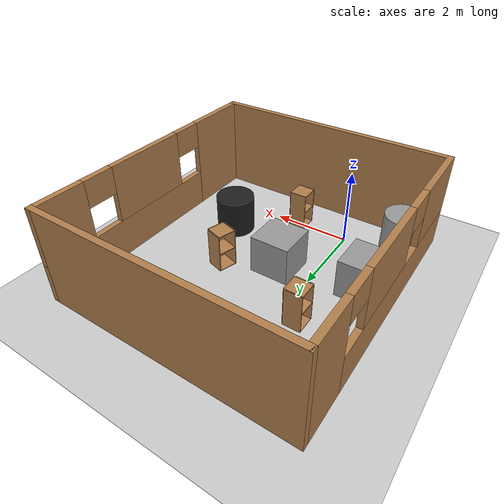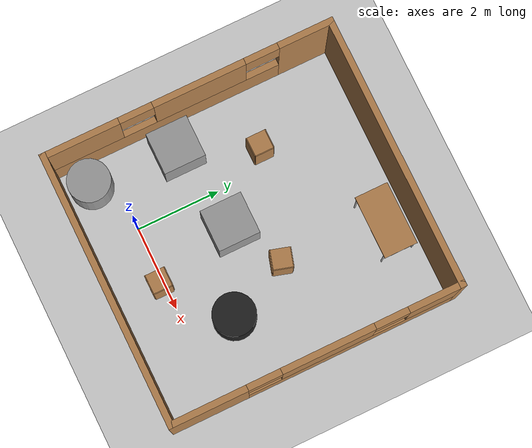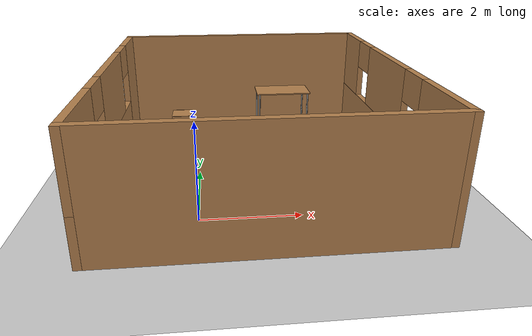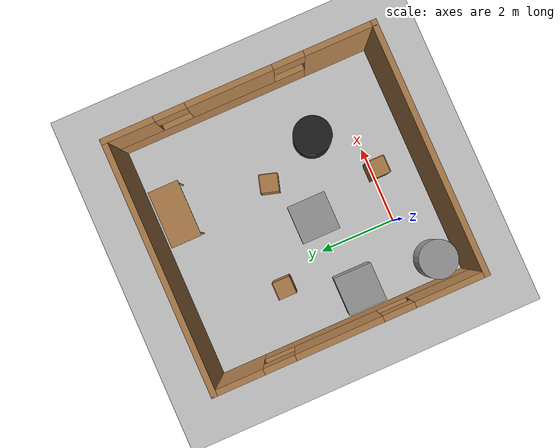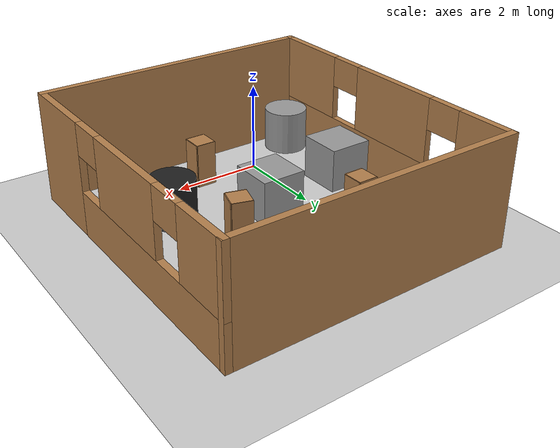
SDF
<sdf version="1.4">
 <world name="default">
  <light name="sun" type="directional">
   <pose>0 0 10 0 -0 0</pose>
   <diffuse>0.8 0.8 0.8 1</diffuse>
   <specular>0.2 0.2 0.2 1</specular>
   <attenuation>
    <range>1000</range>
    <constant>0.9</constant>
    <linear>0.01</linear>
    <quadratic>0.001</quadratic>
   </attenuation>
   <direction>0.5 0.1 -0.9</direction>
  </light>
  <model name="ground_plane">
   <static>1</static>
   <link name="link">
    <collision name="collision">
     <geometry><plane><normal>0 0 1</normal><size>100 100</size></plane></geometry>
     <surface><friction><ode><mu>100</mu><mu2>50</mu2></ode></friction></surface>
    </collision>
    <visual name="visual">
     <cast_shadows>0</cast_shadows>
     <geometry><plane><normal>0 0 1</normal><size>100 100</size></plane></geometry>
     <material>
      <script><uri>file://media/materials/scripts/gazebo.material</uri><name>Gazebo/Grey</name></script>
     </material>
    </visual>
    <velocity_decay><linear>0</linear><angular>0</angular></velocity_decay>
   </link>
  </model>
  <scene><ambient>0.4 0.4 0.4 1</ambient><background>0.7 0.7 0.7 1</background><shadows>0</shadows></scene>
  <physics name="default_physics" default="0" type="ode">
   <max_step_size>0.01</max_step_size>
   <real_time_factor>4</real_time_factor>
   <real_time_update_rate>400</real_time_update_rate>
  </physics>
  <model name="room">
   <pose>1.2563 2.23891 0 0 -0 0</pose>
   <link name="Wall_0">
    <collision name="Wall_0_Collision">
     <geometry><box><size>6.5 0.15 2.5</size></box></geometry>
     <pose>0 0 1.25 0 -0 0</pose>
    </collision>
    <visual name="Wall_0_Visual">
     <pose>0 0 1.25 0 -0 0</pose>
     <geometry><box><size>6.5 0.15 2.5</size></box></geometry>
     <material>
      <script><uri>file://media/materials/scripts/gazebo.material</uri><name>Gazebo/Wood</name></script>
      <ambient>1 1 1 1</ambient>
     </material>
    </visual>
    <pose>0 -3.425 0 0 -0 0</pose>
   </link>
   <link name="Wall_1">
    <pose>3.175 0 0 0 -0 1.5708</pose>
    <visual name="Wall_1_Visual_0">
     <pose>-2.56946 0 1.25 0 -0 0</pose>
     <geometry><box><size>1.86109 0.15 2.5</size></box></geometry>
     <material>
      <script><uri>file://media/materials/scripts/gazebo.material</uri><name>Gazebo/Wood</name></script>
      <ambient>0.760784 0.662745 0.627451 1</ambient>
     </material>
    </visual>
    <collision name="Wall_1_Collision_0">
     <geometry><box><size>1.86109 0.15 2.5</size></box></geometry>
     <pose>-2.56946 0 1.25 0 -0 0</pose>
    </collision>
    <visual name="Wall_1_Visual_1">
     <pose>0.930543 0 0.5 0 -0 0</pose>
     <geometry><box><size>5.13891 0.15 1</size></box></geometry>
     <material>
      <script><uri>file://media/materials/scripts/gazebo.material</uri><name>Gazebo/Wood</name></script>
      <ambient>0.760784 0.662745 0.627451 1</ambient>
     </material>
    </visual>
    <collision name="Wall_1_Collision_1">
     <geometry><box><size>5.13891 0.15 1</size></box></geometry>
     <pose>0.930543 0 0.5 0 -0 0</pose>
    </collision>
    <visual name="Wall_1_Visual_2">
     <pose>0.261087 0 1.75 0 -0 0</pose>
     <geometry><box><size>2.2 0.15 1.5</size></box></geometry>
     <material>
      <script><uri>file://media/materials/scripts/gazebo.material</uri><name>Gazebo/Wood</name></script>
      <ambient>0.760784 0.662745 0.627451 1</ambient>
     </material>
    </visual>
    <collision name="Wall_1_Collision_2">
     <geometry><box><size>2.2 0.15 1.5</size></box></geometry>
     <pose>0.261087 0 1.75 0 -0 0</pose>
    </collision>
    <visual name="Wall_1_Visual_3">
     <pose>2.83054 0 1.75 0 -0 0</pose>
     <geometry><box><size>1.33891 0.15 1.5</size></box></geometry>
     <material>
      <script><uri>file://media/materials/scripts/gazebo.material</uri><name>Gazebo/Wood</name></script>
      <ambient>0.760784 0.662745 0.627451 1</ambient>
     </material>
    </visual>
    <collision name="Wall_1_Collision_3">
     <geometry><box><size>1.33891 0.15 1.5</size></box></geometry>
     <pose>2.83054 0 1.75 0 -0 0</pose>
    </collision>
    <visual name="Wall_1_Visual_4">
     <pose>-1.23891 0 2.15 0 -0 0</pose>
     <geometry><box><size>0.8 0.15 0.7</size></box></geometry>
     <material>
      <script><uri>file://media/materials/scripts/gazebo.material</uri><name>Gazebo/Wood</name></script>
      <ambient>0.760784 0.662745 0.627451 1</ambient>
     </material>
    </visual>
    <collision name="Wall_1_Collision_4">
     <geometry><box><size>0.8 0.15 0.7</size></box></geometry>
     <pose>-1.23891 0 2.15 0 -0 0</pose>
    </collision>
    <visual name="Wall_1_Visual_5">
     <pose>1.76109 0 2.15 0 -0 0</pose>
     <geometry><box><size>0.8 0.15 0.7</size></box></geometry>
     <material>
      <script><uri>file://media/materials/scripts/gazebo.material</uri><name>Gazebo/Wood</name></script>
      <ambient>0.760784 0.662745 0.627451 1</ambient>
     </material>
    </visual>
    <collision name="Wall_1_Collision_5">
     <geometry><box><size>0.8 0.15 0.7</size></box></geometry>
     <pose>1.76109 0 2.15 0 -0 0</pose>
    </collision>
   </link>
   <link name="Wall_2">
    <collision name="Wall_2_Collision">
     <geometry><box><size>6.5 0.15 2.5</size></box></geometry>
     <pose>0 0 1.25 0 -0 0</pose>
    </collision>
    <visual name="Wall_2_Visual">
     <pose>0 0 1.25 0 -0 0</pose>
     <geometry><box><size>6.5 0.15 2.5</size></box></geometry>
     <material>
      <script><uri>file://media/materials/scripts/gazebo.material</uri><name>Gazebo/Wood</name></script>
      <ambient>0.921569 0.807843 0.615686 1</ambient>
     </material>
    </visual>
    <pose>0 3.425 0 0 -0 3.14159</pose>
   </link>
   <link name="Wall_3">
    <pose>-3.175 0 0 0 0 -1.5708</pose>
    <visual name="Wall_3_Visual_0">
     <pose>-2.83054 0 1.25 0 -0 0</pose>
     <geometry><box><size>1.33891 0.15 2.5</size></box></geometry>
     <material>
      <script><uri>file://media/materials/scripts/gazebo.material</uri><name>Gazebo/Wood</name></script>
      <ambient>1 1 1 1</ambient>
     </material>
    </visual>
    <collision name="Wall_3_Collision_0">
     <geometry><box><size>1.33891 0.15 2.5</size></box></geometry>
     <pose>-2.83054 0 1.25 0 -0 0</pose>
    </collision>
    <visual name="Wall_3_Visual_1">
     <pose>0.669457 0 0.5 0 -0 0</pose>
     <geometry><box><size>5.66109 0.15 1</size></box></geometry>
     <material>
      <script><uri>file://media/materials/scripts/gazebo.material</uri><name>Gazebo/Wood</name></script>
      <ambient>1 1 1 1</ambient>
     </material>
    </visual>
    <collision name="Wall_3_Collision_1">
     <geometry><box><size>5.66109 0.15 1</size></box></geometry>
     <pose>0.669457 0 0.5 0 -0 0</pose>
    </collision>
    <visual name="Wall_3_Visual_2">
     <pose>-0.261087 0 1.75 0 -0 0</pose>
     <geometry><box><size>2.2 0.15 1.5</size></box></geometry>
     <material>
      <script><uri>file://media/materials/scripts/gazebo.material</uri><name>Gazebo/Wood</name></script>
      <ambient>1 1 1 1</ambient>
     </material>
    </visual>
    <collision name="Wall_3_Collision_2">
     <geometry><box><size>2.2 0.15 1.5</size></box></geometry>
     <pose>-0.261087 0 1.75 0 -0 0</pose>
    </collision>
    <visual name="Wall_3_Visual_3">
     <pose>2.56946 0 1.75 0 -0 0</pose>
     <geometry><box><size>1.86109 0.15 1.5</size></box></geometry>
     <material>
      <script><uri>file://media/materials/scripts/gazebo.material</uri><name>Gazebo/Wood</name></script>
      <ambient>1 1 1 1</ambient>
     </material>
    </visual>
    <collision name="Wall_3_Collision_3">
     <geometry><box><size>1.86109 0.15 1.5</size></box></geometry>
     <pose>2.56946 0 1.75 0 -0 0</pose>
    </collision>
    <visual name="Wall_3_Visual_4">
     <pose>-1.76109 0 2.15 0 -0 0</pose>
     <geometry><box><size>0.8 0.15 0.7</size></box></geometry>
     <material>
      <script><uri>file://media/materials/scripts/gazebo.material</uri><name>Gazebo/Wood</name></script>
      <ambient>1 1 1 1</ambient>
     </material>
    </visual>
    <collision name="Wall_3_Collision_4">
     <geometry><box><size>0.8 0.15 0.7</size></box></geometry>
     <pose>-1.76109 0 2.15 0 -0 0</pose>
    </collision>
    <visual name="Wall_3_Visual_5">
     <pose>1.23891 0 2.15 0 -0 0</pose>
     <geometry><box><size>0.8 0.15 0.7</size></box></geometry>
     <material>
      <script><uri>file://media/materials/scripts/gazebo.material</uri><name>Gazebo/Wood</name></script>
      <ambient>1 1 1 1</ambient>
     </material>
    </visual>
    <collision name="Wall_3_Collision_5">
     <geometry><box><size>0.8 0.15 0.7</size></box></geometry>
     <pose>1.23891 0 2.15 0 -0 0</pose>
    </collision>
   </link>
   <static>1</static>
  </model>
  <model name="cabinet">
   <static>1</static>
   <link name="cabinet_bottom_plate">
    <inertial>
     <pose>0 0 -1 0 -0 0</pose>
     <inertia><ixx>2.05</ixx><ixy>0</ixy><ixz>0</ixz><iyy>2.05</iyy><iyz>0</iyz><izz>2.05</izz></inertia>
     <mass>25</mass>
    </inertial>
    <collision name="cabinet_bottom_plate_geom">
     <pose>0 0 0.01 0 -0 0</pose>
     <geometry><box><size>0.45 0.45 0.02</size></box></geometry>
    </collision>
    <visual name="cabinet_bottom_plate_geom_visual">
     <pose>0 0 0.01 0 -0 0</pose>
     <geometry><box><size>0.45 0.45 0.02</size></box></geometry>
     <material>
      <script><uri>file://media/materials/scripts/gazebo.material</uri><name>Gazebo/Wood</name></script>
     </material>
    </visual>
    <collision name="cabinet_bottom_plate_geom_cabinet_back_plate">
     <pose>0.235 0 0.51 0 -0 0</pose>
     <geometry><box><size>0.02 0.45 1.02</size></box></geometry>
    </collision>
    <visual name="cabinet_bottom_plate_geom_cabinet_back_plate_visual">
     <pose>0.235 0 0.51 0 -0 0</pose>
     <geometry><box><size>0.02 0.45 1.02</size></box></geometry>
     <material>
      <script><uri>file://media/materials/scripts/gazebo.material</uri><name>Gazebo/Wood</name></script>
     </material>
    </visual>
    <collision name="cabinet_bottom_plate_geom_cabinet_left_plate">
     <pose>0 0.235 0.51 0 -0 0</pose>
     <geometry><box><size>0.45 0.02 1.02</size></box></geometry>
    </collision>
    <visual name="cabinet_bottom_plate_geom_cabinet_left_plate_visual">
     <pose>0 0.235 0.51 0 -0 0</pose>
     <geometry><box><size>0.45 0.02 1.02</size></box></geometry>
     <material>
      <script><uri>file://media/materials/scripts/gazebo.material</uri><name>Gazebo/Wood</name></script>
     </material>
    </visual>
    <collision name="cabinet_bottom_plate_geom_cabinet_middle_plate">
     <pose>0 0 0.51 0 -0 0</pose>
     <geometry><box><size>0.45 0.45 0.02</size></box></geometry>
    </collision>
    <visual name="cabinet_bottom_plate_geom_cabinet_middle_plate_visual">
     <pose>0 0 0.51 0 -0 0</pose>
     <geometry><box><size>0.45 0.45 0.02</size></box></geometry>
     <material>
      <script><uri>file://media/materials/scripts/gazebo.material</uri><name>Gazebo/Wood</name></script>
     </material>
    </visual>
    <collision name="cabinet_bottom_plate_geom_cabinet_right_plate">
     <pose>0 -0.235 0.51 0 -0 0</pose>
     <geometry><box><size>0.45 0.02 1.02</size></box></geometry>
    </collision>
    <visual name="cabinet_bottom_plate_geom_cabinet_right_plate_visual">
     <pose>0 -0.235 0.51 0 -0 0</pose>
     <geometry><box><size>0.45 0.02 1.02</size></box></geometry>
     <material>
      <script><uri>file://media/materials/scripts/gazebo.material</uri><name>Gazebo/Wood</name></script>
     </material>
    </visual>
    <collision name="cabinet_bottom_plate_geom_cabinet_top_plate">
     <pose>0 0 1.01 0 -0 0</pose>
     <geometry><box><size>0.45 0.45 0.02</size></box></geometry>
    </collision>
    <visual name="cabinet_bottom_plate_geom_cabinet_top_plate_visual">
     <pose>0 0 1.01 0 -0 0</pose>
     <geometry><box><size>0.45 0.45 0.02</size></box></geometry>
     <material>
      <script><uri>file://media/materials/scripts/gazebo.material</uri><name>Gazebo/Wood</name></script>
     </material>
    </visual>
   </link>
   <pose>2.10554 2.55537 0 0 0 -0.287941</pose>
  </model>
  <model name="cabinet_0">
   <static>1</static>
   <link name="cabinet_bottom_plate">
    <inertial>
     <pose>0 0 -1 0 -0 0</pose>
     <inertia><ixx>2.05</ixx><ixy>0</ixy><ixz>0</ixz><iyy>2.05</iyy><iyz>0</iyz><izz>2.05</izz></inertia>
     <mass>25</mass>
    </inertial>
    <collision name="cabinet_bottom_plate_geom">
     <pose>0 0 0.01 0 -0 0</pose>
     <geometry><box><size>0.45 0.45 0.02</size></box></geometry>
    </collision>
    <visual name="cabinet_bottom_plate_geom_visual">
     <pose>0 0 0.01 0 -0 0</pose>
     <geometry><box><size>0.45 0.45 0.02</size></box></geometry>
     <material>
      <script><uri>file://media/materials/scripts/gazebo.material</uri><name>Gazebo/Wood</name></script>
     </material>
    </visual>
    <collision name="cabinet_bottom_plate_geom_cabinet_back_plate">
     <pose>0.235 0 0.51 0 -0 0</pose>
     <geometry><box><size>0.02 0.45 1.02</size></box></geometry>
    </collision>
    <visual name="cabinet_bottom_plate_geom_cabinet_back_plate_visual">
     <pose>0.235 0 0.51 0 -0 0</pose>
     <geometry><box><size>0.02 0.45 1.02</size></box></geometry>
     <material>
      <script><uri>file://media/materials/scripts/gazebo.material</uri><name>Gazebo/Wood</name></script>
     </material>
    </visual>
    <collision name="cabinet_bottom_plate_geom_cabinet_left_plate">
     <pose>0 0.235 0.51 0 -0 0</pose>
     <geometry><box><size>0.45 0.02 1.02</size></box></geometry>
    </collision>
    <visual name="cabinet_bottom_plate_geom_cabinet_left_plate_visual">
     <pose>0 0.235 0.51 0 -0 0</pose>
     <geometry><box><size>0.45 0.02 1.02</size></box></geometry>
     <material>
      <script><uri>file://media/materials/scripts/gazebo.material</uri><name>Gazebo/Wood</name></script>
     </material>
    </visual>
    <collision name="cabinet_bottom_plate_geom_cabinet_middle_plate">
     <pose>0 0 0.51 0 -0 0</pose>
     <geometry><box><size>0.45 0.45 0.02</size></box></geometry>
    </collision>
    <visual name="cabinet_bottom_plate_geom_cabinet_middle_plate_visual">
     <pose>0 0 0.51 0 -0 0</pose>
     <geometry><box><size>0.45 0.45 0.02</size></box></geometry>
     <material>
      <script><uri>file://media/materials/scripts/gazebo.material</uri><name>Gazebo/Wood</name></script>
     </material>
    </visual>
    <collision name="cabinet_bottom_plate_geom_cabinet_right_plate">
     <pose>0 -0.235 0.51 0 -0 0</pose>
     <geometry><box><size>0.45 0.02 1.02</size></box></geometry>
    </collision>
    <visual name="cabinet_bottom_plate_geom_cabinet_right_plate_visual">
     <pose>0 -0.235 0.51 0 -0 0</pose>
     <geometry><box><size>0.45 0.02 1.02</size></box></geometry>
     <material>
      <script><uri>file://media/materials/scripts/gazebo.material</uri><name>Gazebo/Wood</name></script>
     </material>
    </visual>
    <collision name="cabinet_bottom_plate_geom_cabinet_top_plate">
     <pose>0 0 1.01 0 -0 0</pose>
     <geometry><box><size>0.45 0.45 0.02</size></box></geometry>
    </collision>
    <visual name="cabinet_bottom_plate_geom_cabinet_top_plate_visual">
     <pose>0 0 1.01 0 -0 0</pose>
     <geometry><box><size>0.45 0.45 0.02</size></box></geometry>
     <material>
      <script><uri>file://media/materials/scripts/gazebo.material</uri><name>Gazebo/Wood</name></script>
     </material>
    </visual>
   </link>
   <pose>1.37252 -0.091914 0 0 -0 0</pose>
  </model>
  <model name="unit_cylinder_0">
   <pose>2.76708 1.08151 0.499096 4.8e-05 4.8e-05 -1.8e-05</pose>
   <link name="link">
    <inertial>
     <mass>1</mass>
     <inertia><ixx>0.145833</ixx><ixy>0</ixy><ixz>0</ixz><iyy>0.145833</iyy><iyz>0</iyz><izz>0.125</izz></inertia>
    </inertial>
    <collision name="collision">
     <geometry><cylinder><radius>0.5</radius><length>1</length></cylinder></geometry>
    </collision>
    <visual name="visual">
     <geometry><cylinder><radius>0.5</radius><length>1</length></cylinder></geometry>
     <material>
      <script><name>Gazebo/Black</name><uri>file://media/materials/scripts/gazebo.material</uri></script>
     </material>
    </visual>
   </link>
  </model>
  <model name="unit_box_1">
   <pose>0.875712 1.88515 0.49907 0.0001 0 -1e-06</pose>
   <link name="link">
    <inertial>
     <mass>1</mass>
     <inertia>
      <ixx>0.166667</ixx>
      <ixy>0</ixy>
      <ixz>0</ixz>
      <iyy>0.166667</iyy>
      <iyz>0</iyz>
      <izz>0.166667</izz>
     </inertia>
    </inertial>
    <collision name="collision"><geometry><box><size>1 1 1</size></box></geometry></collision>
    <visual name="visual">
     <geometry><box><size>1 1 1</size></box></geometry>
     <material>
      <script><name>Gazebo/Grey</name><uri>file://media/materials/scripts/gazebo.material</uri></script>
     </material>
    </visual>
   </link>
  </model>
  <model name="unit_box_0">
   <pose>-1.207 1.54488 0.49907 -0.0001 -0 -1e-06</pose>
   <link name="link">
    <inertial>
     <mass>1</mass>
     <inertia>
      <ixx>0.166667</ixx>
      <ixy>0</ixy>
      <ixz>0</ixz>
      <iyy>0.166667</iyy>
      <iyz>0</iyz>
      <izz>0.166667</izz>
     </inertia>
    </inertial>
    <collision name="collision"><geometry><box><size>1 1 1</size></box></geometry></collision>
    <visual name="visual">
     <geometry><box><size>1 1 1</size></box></geometry>
     <material>
      <script><name>Gazebo/Grey</name><uri>file://media/materials/scripts/gazebo.material</uri></script>
     </material>
    </visual>
   </link>
  </model>
  <model name="unit_cylinder">
   <pose>-1.31374 -0.531766 0.49912 0 0 -1.8e-05</pose>
   <link name="link">
    <inertial>
     <mass>1</mass>
     <inertia><ixx>0.145833</ixx><ixy>0</ixy><ixz>0</ixz><iyy>0.145833</iyy><iyz>0</iyz><izz>0.125</izz></inertia>
    </inertial>
    <collision name="collision">
     <geometry><cylinder><radius>0.5</radius><length>1</length></cylinder></geometry>
    </collision>
    <visual name="visual">
     <geometry><cylinder><radius>0.5</radius><length>1</length></cylinder></geometry>
     <material>
      <script><name>Gazebo/Grey</name><uri>file://media/materials/scripts/gazebo.material</uri></script>
     </material>
    </visual>
   </link>
  </model>
  <model name="cabinet_1">
   <static>1</static>
   <link name="cabinet_bottom_plate">
    <inertial>
     <pose>0 0 -1 0 -0 0</pose>
     <inertia><ixx>2.05</ixx><ixy>0</ixy><ixz>0</ixz><iyy>2.05</iyy><iyz>0</iyz><izz>2.05</izz></inertia>
     <mass>25</mass>
    </inertial>
    <collision name="cabinet_bottom_plate_geom">
     <pose>0 0 0.01 0 -0 0</pose>
     <geometry><box><size>0.45 0.45 0.02</size></box></geometry>
    </collision>
    <visual name="cabinet_bottom_plate_geom_visual">
     <pose>0 0 0.01 0 -0 0</pose>
     <geometry><box><size>0.45 0.45 0.02</size></box></geometry>
     <material>
      <script><uri>file://media/materials/scripts/gazebo.material</uri><name>Gazebo/Wood</name></script>
     </material>
    </visual>
    <collision name="cabinet_bottom_plate_geom_cabinet_back_plate">
     <pose>0.235 0 0.51 0 -0 0</pose>
     <geometry><box><size>0.02 0.45 1.02</size></box></geometry>
    </collision>
    <visual name="cabinet_bottom_plate_geom_cabinet_back_plate_visual">
     <pose>0.235 0 0.51 0 -0 0</pose>
     <geometry><box><size>0.02 0.45 1.02</size></box></geometry>
     <material>
      <script><uri>file://media/materials/scripts/gazebo.material</uri><name>Gazebo/Wood</name></script>
     </material>
    </visual>
    <collision name="cabinet_bottom_plate_geom_cabinet_left_plate">
     <pose>0 0.235 0.51 0 -0 0</pose>
     <geometry><box><size>0.45 0.02 1.02</size></box></geometry>
    </collision>
    <visual name="cabinet_bottom_plate_geom_cabinet_left_plate_visual">
     <pose>0 0.235 0.51 0 -0 0</pose>
     <geometry><box><size>0.45 0.02 1.02</size></box></geometry>
     <material>
      <script><uri>file://media/materials/scripts/gazebo.material</uri><name>Gazebo/Wood</name></script>
     </material>
    </visual>
    <collision name="cabinet_bottom_plate_geom_cabinet_middle_plate">
     <pose>0 0 0.51 0 -0 0</pose>
     <geometry><box><size>0.45 0.45 0.02</size></box></geometry>
    </collision>
    <visual name="cabinet_bottom_plate_geom_cabinet_middle_plate_visual">
     <pose>0 0 0.51 0 -0 0</pose>
     <geometry><box><size>0.45 0.45 0.02</size></box></geometry>
     <material>
      <script><uri>file://media/materials/scripts/gazebo.material</uri><name>Gazebo/Wood</name></script>
     </material>
    </visual>
    <collision name="cabinet_bottom_plate_geom_cabinet_right_plate">
     <pose>0 -0.235 0.51 0 -0 0</pose>
     <geometry><box><size>0.45 0.02 1.02</size></box></geometry>
    </collision>
    <visual name="cabinet_bottom_plate_geom_cabinet_right_plate_visual">
     <pose>0 -0.235 0.51 0 -0 0</pose>
     <geometry><box><size>0.45 0.02 1.02</size></box></geometry>
     <material>
      <script><uri>file://media/materials/scripts/gazebo.material</uri><name>Gazebo/Wood</name></script>
     </material>
    </visual>
    <collision name="cabinet_bottom_plate_geom_cabinet_top_plate">
     <pose>0 0 1.01 0 -0 0</pose>
     <geometry><box><size>0.45 0.45 0.02</size></box></geometry>
    </collision>
    <visual name="cabinet_bottom_plate_geom_cabinet_top_plate_visual">
     <pose>0 0 1.01 0 -0 0</pose>
     <geometry><box><size>0.45 0.45 0.02</size></box></geometry>
     <material>
      <script><uri>file://media/materials/scripts/gazebo.material</uri><name>Gazebo/Wood</name></script>
     </material>
    </visual>
   </link>
   <pose>-0.427018 3.25159 0 0 -0 0</pose>
  </model>
  <gravity>0 0 -9.8</gravity>
  <magnetic_field>6e-06 2.3e-05 -4.2e-05</magnetic_field>
  <atmosphere type="adiabatic"/>
  <spherical_coordinates>
   <surface_model>EARTH_WGS84</surface_model>
   <latitude_deg>0</latitude_deg>
   <longitude_deg>0</longitude_deg>
   <elevation>0</elevation>
   <heading_deg>0</heading_deg>
  </spherical_coordinates>
  <model name="table">
   <static>1</static>
   <link name="link">
    <collision name="surface">
     <pose>0 0 1 0 -0 0</pose>
     <geometry><box><size>1.5 0.8 0.03</size></box></geometry>
     <surface><friction><ode><mu>0.6</mu><mu2>0.6</mu2></ode></friction></surface>
    </collision>
    <visual name="visual1">
     <pose>0 0 1 0 -0 0</pose>
     <geometry><box><size>1.5 0.8 0.03</size></box></geometry>
     <material>
      <script><uri>file://media/materials/scripts/gazebo.material</uri><name>Gazebo/Wood</name></script>
     </material>
    </visual>
    <collision name="front_left_leg">
     <pose>0.68 0.38 0.5 0 -0 0</pose>
     <geometry><cylinder><radius>0.02</radius><length>1</length></cylinder></geometry>
    </collision>
    <visual name="front_left_leg">
     <pose>0.68 0.38 0.5 0 -0 0</pose>
     <geometry><cylinder><radius>0.02</radius><length>1</length></cylinder></geometry>
     <material>
      <script><uri>file://media/materials/scripts/gazebo.material</uri><name>Gazebo/Grey</name></script>
     </material>
    </visual>
    <collision name="front_right_leg">
     <pose>0.68 -0.38 0.5 0 -0 0</pose>
     <geometry><cylinder><radius>0.02</radius><length>1</length></cylinder></geometry>
    </collision>
    <visual name="front_right_leg">
     <pose>0.68 -0.38 0.5 0 -0 0</pose>
     <geometry><cylinder><radius>0.02</radius><length>1</length></cylinder></geometry>
     <material>
      <script><uri>file://media/materials/scripts/gazebo.material</uri><name>Gazebo/Grey</name></script>
     </material>
    </visual>
    <collision name="back_right_leg">
     <pose>-0.68 -0.38 0.5 0 -0 0</pose>
     <geometry><cylinder><radius>0.02</radius><length>1</length></cylinder></geometry>
    </collision>
    <visual name="back_right_leg">
     <pose>-0.68 -0.38 0.5 0 -0 0</pose>
     <geometry><cylinder><radius>0.02</radius><length>1</length></cylinder></geometry>
     <material>
      <script><uri>file://media/materials/scripts/gazebo.material</uri><name>Gazebo/Grey</name></script>
     </material>
    </visual>
    <collision name="back_left_leg">
     <pose>-0.68 0.38 0.5 0 -0 0</pose>
     <geometry><cylinder><radius>0.02</radius><length>1</length></cylinder></geometry>
    </collision>
    <visual name="back_left_leg">
     <pose>-0.68 0.38 0.5 0 -0 0</pose>
     <geometry><cylinder><radius>0.02</radius><length>1</length></cylinder></geometry>
     <material>
      <script><uri>file://media/materials/scripts/gazebo.material</uri><name>Gazebo/Grey</name></script>
     </material>
    </visual>
   </link>
   <pose>2.34675 5.00205 0 0 -0 0</pose>
  </model>
 </world>
</sdf>
